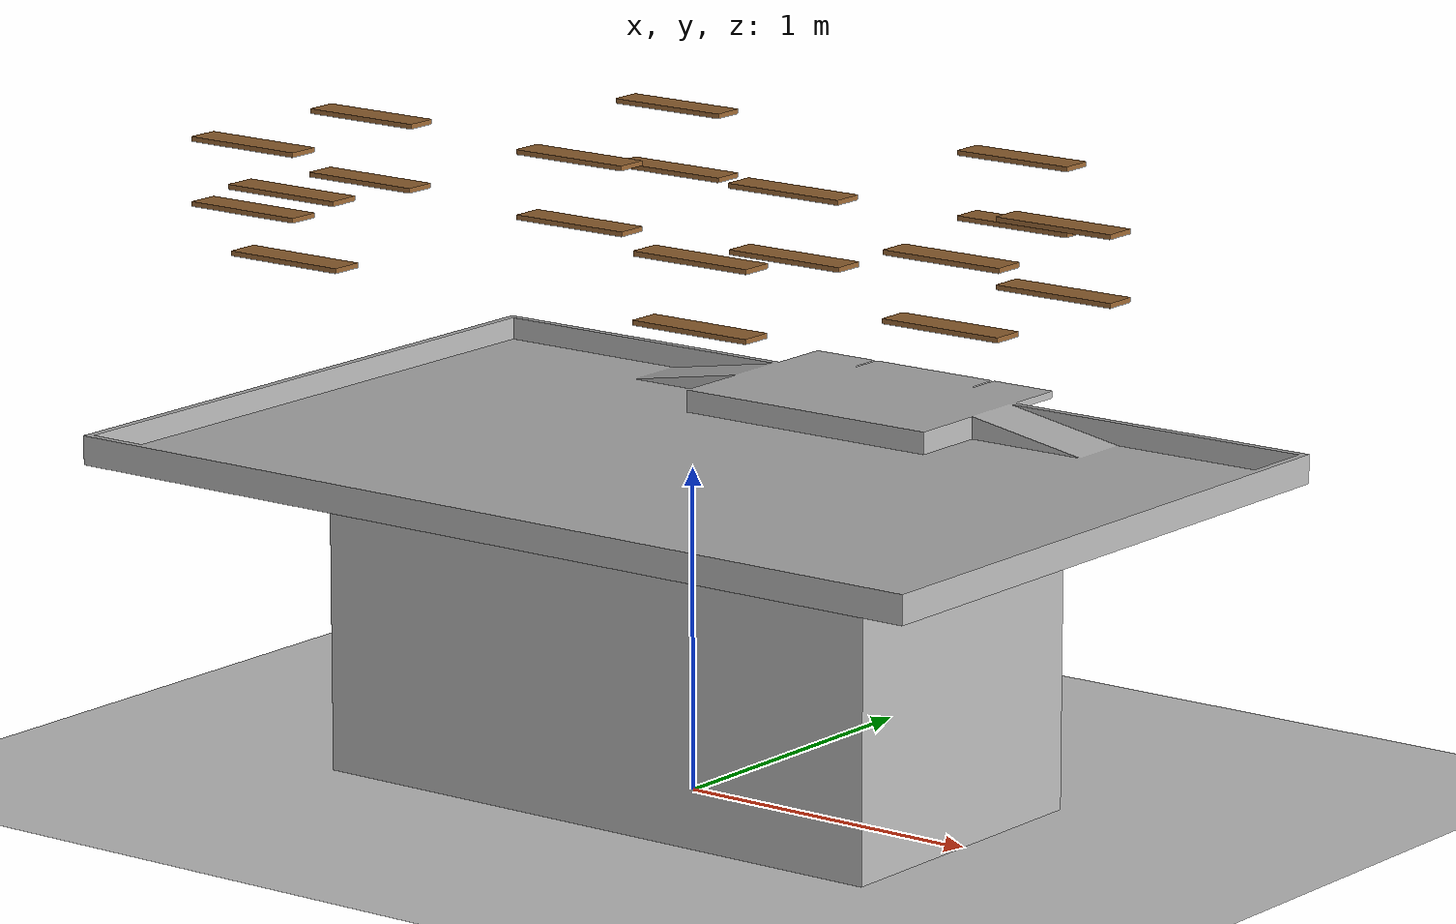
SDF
<sdf version="1.4">
 <world name="eurobot_basic">
  <include><uri>model://ground_plane</uri></include>
  <include><uri>model://sun</uri></include>
  <include><uri>model://eurobot_arena_2025</uri></include>
  <include>
   <uri>model://Plank</uri>
   <name>Plank</name>
   <pose>-1.3023999929428101 -0.48573699593544006 1.7 0 0 0</pose>
  </include>
  <include>
   <uri>model://Plank</uri>
   <name>Plank_0</name>
   <pose>-0.75034302473068237 -0.93921798467636108 1.7 0 0 0</pose>
  </include>
  <include>
   <uri>model://Plank</uri>
   <name>Plank_1</name>
   <pose>-0.40230000019073486 -0.035934299230575562 1.7 0 0 0</pose>
  </include>
  <include>
   <uri>model://Plank</uri>
   <name>Plank_2</name>
   <pose>-1.3016999959945679 0.061442900449037552 1.7 0 0 0</pose>
  </include>
  <include>
   <uri>model://Plank</uri>
   <name>Plank_3</name>
   <pose>-0.64987397193908691 0.75768899917602539 1.7 0 0 0</pose>
  </include>
  <include>
   <uri>model://Plank</uri>
   <name>Plank_4</name>
   <pose>0.65323799848556519 0.75965797901153564 1.7 0 0 0</pose>
  </include>
  <include>
   <uri>model://Plank</uri>
   <name>Plank_5</name>
   <pose>1.2977800369262695 0.058632299304008484 1.7 0 0 0</pose>
  </include>
  <include>
   <uri>model://Plank</uri>
   <name>Plank_6</name>
   <pose>1.2961200475692749 -0.4930729866027832 1.7 0 0 0</pose>
  </include>
  <include>
   <uri>model://Plank</uri>
   <name>Plank_7</name>
   <pose>0.40019199252128601 -0.03542260080575943 1.7 0 0 0</pose>
  </include>
  <include>
   <uri>model://Plank</uri>
   <name>Plank_8</name>
   <pose>0.74871701002120972 -0.93932002782821655 1.7 0 0 0</pose>
  </include>
  <include>
   <uri>model://Plank</uri>
   <name>Plank_9</name>
   <pose>-0.75388997793197632 -0.94500702619552612 1.9 0 0 0</pose>
  </include>
  <include>
   <uri>model://Plank</uri>
   <name>Plank_10</name>
   <pose>-0.4027400016784668 -0.037016831338405609 1.9 0 0 0</pose>
  </include>
  <include>
   <uri>model://Plank</uri>
   <name>Plank_11</name>
   <pose>-1.2949600219726562 0.061498101800680161 1.9 0 0 0</pose>
  </include>
  <include>
   <uri>model://Plank</uri>
   <name>Plank_12</name>
   <pose>-0.65046900510787964 0.75871902704238892 1.9 0 0 0</pose>
  </include>
  <include>
   <uri>model://Plank</uri>
   <name>Plank_13</name>
   <pose>0.65300667285919189 0.75773602724075317 1.9 0 0 0</pose>
  </include>
  <include>
   <uri>model://Plank</uri>
   <name>Plank_14</name>
   <pose>1.2940399646759033 0.058428201824426651 1.9 0 0 0</pose>
  </include>
  <include>
   <uri>model://Plank</uri>
   <name>Plank_15</name>
   <pose>1.2997900247573853 -0.49562999606132507 1.9 0 0 0</pose>
  </include>
  <include>
   <uri>model://Plank</uri>
   <name>Plank_16</name>
   <pose>0.39823400974273682 -0.038625601679086685 1.9 0 0 0</pose>
  </include>
  <include>
   <uri>model://Plank</uri>
   <name>Plank_17</name>
   <pose>0.74990999698638916 -0.93815100193023682 1.9 0 0 0</pose>
  </include>
  <include>
   <uri>model://Plank</uri>
   <name>Plank_18</name>
   <pose>-1.3017100095748901 -0.48313429951667786 1.9 0 0 0</pose>
  </include>
 </world>
</sdf>

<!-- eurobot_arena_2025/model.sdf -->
<sdf version='1.7'>
  <model name='Table_2024'>
   	<static>true</static>
    <plugin filename="gz-sim-label-system" name="gz::sim::systems::Label">
        <label>1</label>
    </plugin>
    <link name='link_0'>
			<gravity>0</gravity>
      <inertial>
        <inertia>
          <ixx>0.166667</ixx>
          <ixy>0</ixy>
          <ixz>0</ixz>
          <iyy>0.166667</iyy>
          <iyz>0</iyz>
          <izz>0.166667</izz>
        </inertia>
      </inertial>
      <pose>0 0 0 0 0 0</pose>
      <visual name='visual'>
        <pose>0 0 0 0 -0 0</pose>
        <geometry>
          <mesh>
            <uri>model://eurobot_arena_2025/meshes/eurobot_arena_2025.dae</uri>
            <scale>1 1 1</scale>
          </mesh>
        </geometry>
        <transparency>0</transparency>
        <cast_shadows>1</cast_shadows>
      </visual>
      <collision name='collision'>
        <laser_retro>0</laser_retro>
        <max_contacts>10</max_contacts>
        <pose>0 0 0 0 -0 0</pose>
        <geometry>
          <mesh>
            <uri>model://eurobot_arena_2025/meshes/eurobot_arena_2025.dae</uri>
            <scale>1 1 1</scale>
          </mesh>
        </geometry>
        <surface>
          <friction>
            <ode>
              <mu>1</mu>
              <mu2>1</mu2>
              <fdir1>0 0 0</fdir1>
              <slip1>0</slip1>
              <slip2>0</slip2>
            </ode>
            <torsional>
              <coefficient>1</coefficient>
              <patch_radius>0</patch_radius>
              <surface_radius>0</surface_radius>
              <use_patch_radius>1</use_patch_radius>
              <ode>
                <slip>0</slip>
              </ode>
            </torsional>
          </friction>

          <contact>
            <collide_without_contact>0</collide_without_contact>
            <collide_without_contact_bitmask>1</collide_without_contact_bitmask>
            <collide_bitmask>1</collide_bitmask>
            <ode>
              <soft_cfm>0</soft_cfm>
              <soft_erp>0.2</soft_erp>
              <kp>1e+13</kp>
              <kd>1</kd>
              <max_vel>0.01</max_vel>
              <min_depth>0.01</min_depth>
            </ode>
            <bullet>
              <split_impulse>1</split_impulse>
              <split_impulse_penetration_threshold>-0.01</split_impulse_penetration_threshold>
              <soft_cfm>0</soft_cfm>
              <soft_erp>0.2</soft_erp>
              <kp>1e+13</kp>
              <kd>1</kd>
            </bullet>
          </contact>
        </surface>
      </collision>

       <collision name="table_stand_collision">
        <pose>0 0 0.489 0 0 0</pose>
        <geometry>
          <box>
            <size>2 1 0.978</size>
          </box>
        </geometry>
      </collision>

      <visual name="table_stand_visual">
        <pose>0 0 0.489 0 0 0</pose>
        <geometry>
          <box>
            <size>2 1 0.978</size>
          </box>
        </geometry>
      </visual>

    </link>
    <pose>0 0 0 0 0 0</pose>

    <static>0</static>
    <allow_auto_disable>1</allow_auto_disable>
  </model>
</sdf>

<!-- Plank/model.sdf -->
<sdf version='1.7'>
  <model name='Plank'>
   	<static>false</static>
    <allow_auto_disable>true</allow_auto_disable>
    <plugin filename="gz-sim-label-system" name="gz::sim::systems::Label">
        <label>10</label>
    </plugin>
    <link name='link_0'>
			<gravity>1</gravity>
      <inertial>
        <pose>0 0 0.02 0 0 0</pose>
        <mass>0.025</mass>
        <inertia>
          <ixx>2.5e-5</ixx>
          <ixy>0</ixy>
          <ixz>0</ixz>
          <iyy>2.5e-5</iyy>
          <iyz>0</iyz>
          <izz>8e-6</izz>
        </inertia>
      </inertial>
      <pose>0 0 0 0 0 0</pose>
      <visual name='visual'>
        <pose>0 0 0 0 -0 0</pose>
        <geometry>
          <box>
        <size>0.4 0.1 0.015</size>
          </box>
        </geometry>
        <material>
          <ambient>0.6 0.4 0.2 1</ambient>
          <diffuse>0.6 0.4 0.2 1</diffuse>
          <specular>0.1 0.1 0.1 1</specular>
          <emissive>0 0 0 1</emissive>
        </material>
        <transparency>0</transparency>
        <cast_shadows>1</cast_shadows>
      </visual>

      <collision name="collision">
  <max_contacts>100</max_contacts> <!-- Nombre élevé de points -->
  <pose>0 0 0 0 0 0</pose>
  <geometry>
    <box>
      <size>0.4 0.1 0.015</size>
    </box>
  </geometry>
  <surface>
    <bounce>
      <restitution_coefficient>0.0</restitution_coefficient>
      <threshold>1e5</threshold>
    </bounce>
    <friction>
      <ode>
        <mu>2.0</mu>
        <mu2>2.0</mu2>
      </ode>
    </friction>
    <contact>
      <ode>
        <soft_cfm>0</soft_cfm>
        <soft_erp>0.8</soft_erp>
        <kp>1e5</kp>
        <kd>1</kd>
        <max_vel>0.1</max_vel>
        <min_depth>0.01</min_depth>
      </ode>
    </contact>
    <torsional>
      <coefficient>1</coefficient>
      <patch_radius>0.05</patch_radius>
      <surface_radius>0.05</surface_radius>
      <use_patch_radius>1</use_patch_radius>
      <ode>
        <slip>0</slip>
      </ode>
    </torsional>
  </surface>
</collision>

    </link>
    <pose>0 0 0 0 0 0</pose>

    <allow_auto_disable>1</allow_auto_disable>
  </model>
</sdf>
